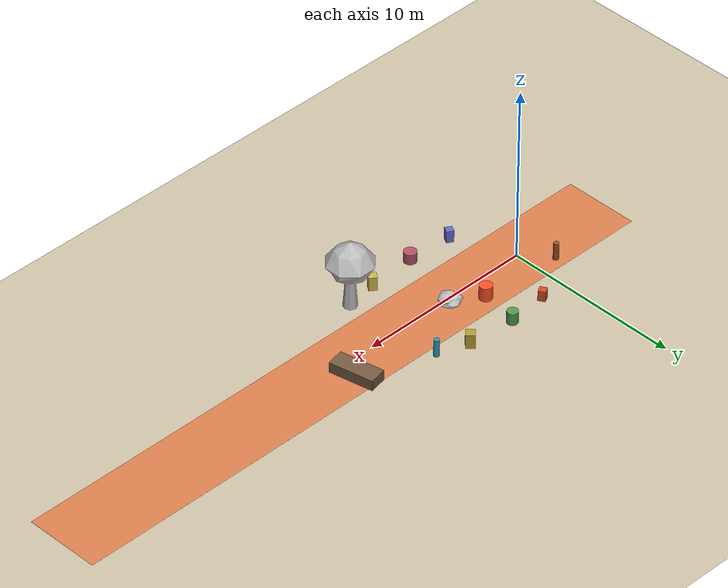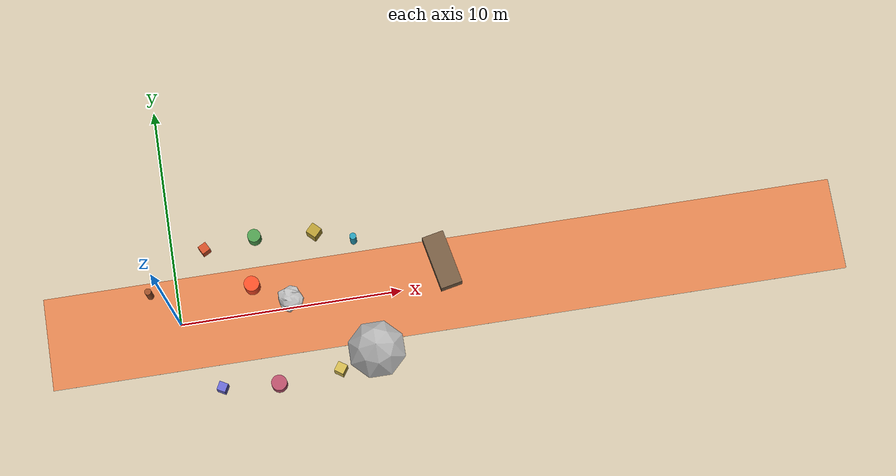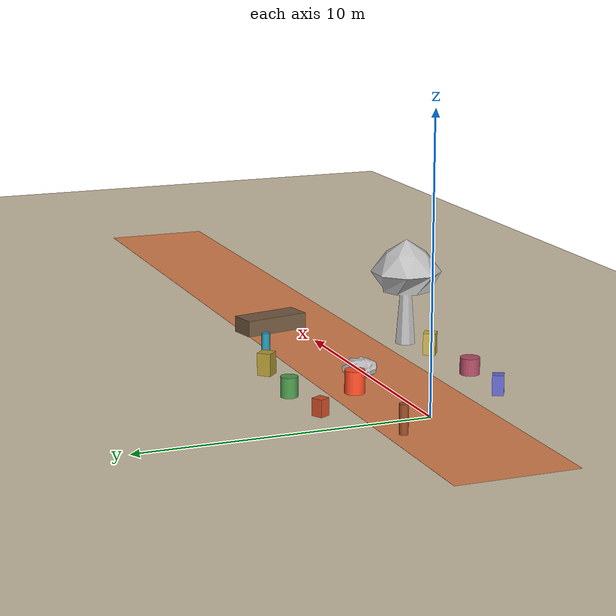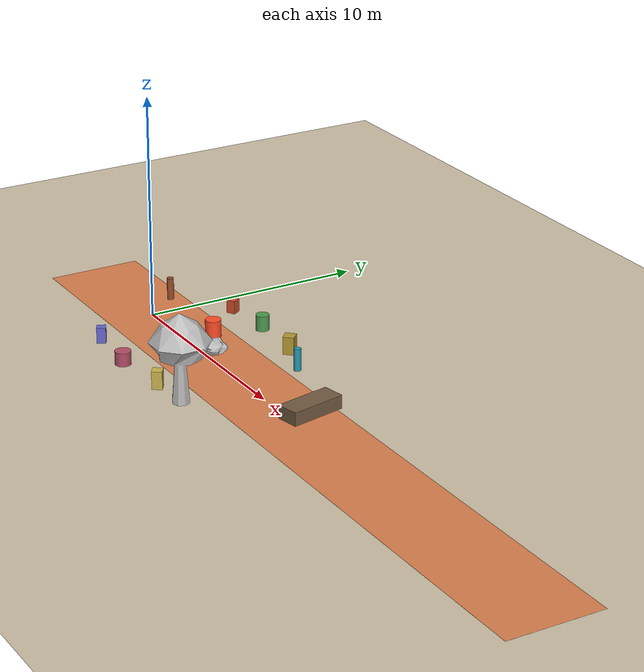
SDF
<?xml version="1.0" ?>
<sdf version="1.8">
  <world name="outdoor_terrain">

    <!-- Physics engine -->
    <physics name="1ms" type="ignored">
      <max_step_size>0.001</max_step_size>
      <real_time_factor>1.0</real_time_factor>
    </physics>

    <!-- Essential Gazebo Plugins -->
    <plugin filename="gz-sim-physics-system" name="gz::sim::systems::Physics"/>
    <plugin filename="gz-sim-user-commands-system" name="gz::sim::systems::UserCommands"/>
    <plugin filename="gz-sim-scene-broadcaster-system" name="gz::sim::systems::SceneBroadcaster"/>
    <plugin filename="gz-sim-sensors-system" name="gz::sim::systems::Sensors">
      <render_engine>ogre2</render_engine>
    </plugin>
    <plugin filename="gz-sim-imu-system" name="gz::sim::systems::Imu"/>

    <!-- Sunlight & Atmosphere -->
    <light type="directional" name="sun">
      <cast_shadows>true</cast_shadows>
      <pose>0 0 30 0 0 0</pose>
      <diffuse>0.9 0.85 0.8 1</diffuse>
      <specular>0.3 0.3 0.3 1</specular>
      <direction>-0.5 0.3 -0.9</direction>
    </light>

    <!-- Outdoor Ground Plane / Arid Scrub Terrain -->
    <model name="outdoor_ground">
      <static>true</static>
      <link name="ground_link">
        <collision name="ground_collision">
          <geometry>
            <plane>
              <normal>0 0 1</normal>
              <size>100 100</size>
            </plane>
          </geometry>
        </collision>
        <visual name="ground_visual">
          <geometry>
            <plane>
              <normal>0 0 1</normal>
              <size>100 100</size>
            </plane>
          </geometry>
          <material>
            <ambient>0.6 0.55 0.45 1</ambient>
            <diffuse>0.8 0.75 0.65 1</diffuse>
            <specular>0.05 0.05 0.05 1</specular>
            <pbr>
              <metal>
                <albedo_map>materials/textures/arid_grass.png</albedo_map>
              </metal>
            </pbr>
          </material>
        </visual>
      </link>
    </model>

    <!-- Indian Red Laterite Trail Corridor (Central Traversable Pathway) -->
    <model name="laterite_trail">
      <static>true</static>
      <pose>12.0 0.0 0.001 0 0 0</pose>
      <link name="trail_link">
        <visual name="trail_visual">
          <geometry>
            <box>
              <size>36.0 4.2 0.002</size>
            </box>
          </geometry>
          <material>
            <ambient>0.7 0.4 0.25 1</ambient>
            <diffuse>0.85 0.5 0.3 1</diffuse>
            <specular>0.05 0.05 0.05 1</specular>
            <pbr>
              <metal>
                <albedo_map>materials/textures/laterite_trail.png</albedo_map>
              </metal>
            </pbr>
          </material>
        </visual>
      </link>
    </model>

    <!-- Obstacle 1: Faceted Weathered Rock Boulder (blocking direct path at x=5, y=0.35) -->
    <model name="boulder_obstacle">
      <static>true</static>
      <pose>5.0 0.35 0.0 0 0 0.4</pose>
      <link name="boulder_link">
        <collision name="boulder_col">
          <geometry>
            <cylinder>
              <radius>0.50</radius>
              <length>0.9</length>
            </cylinder>
          </geometry>
          <pose>0 0 0.45 0 0 0</pose>
        </collision>
        <visual name="boulder_vis">
          <geometry>
            <mesh>
              <uri>model://realistic_boulder/meshes/boulder.obj</uri>
              <scale>0.75 0.75 0.75</scale>
            </mesh>
          </geometry>
        </visual>
      </link>
    </model>

    <!-- Obstacle 2: Textured Scrub Tree / Vegetative Hazard at x=8.5, y=-3.0 (moved south to clear south return corridor) -->
    <model name="tree_obstacle">
      <static>true</static>
      <pose>8.5 -3.0 0.0 0 0 0</pose>
      <link name="tree_link">
        <collision name="tree_col">
          <geometry>
            <cylinder>
              <radius>0.42</radius>
              <length>3.2</length>
            </cylinder>
          </geometry>
          <pose>0 0 1.6 0 0 0</pose>
        </collision>
        <visual name="tree_vis">
          <geometry>
            <mesh>
              <uri>model://scrub_tree/meshes/tree.obj</uri>
              <scale>1.0 1.0 1.0</scale>
            </mesh>
          </geometry>
        </visual>
      </link>
    </model>

    <!-- Obstacle 3: Natural Ditch Barrier at x=12, y=1.0 -->
    <model name="barrier_obstacle">
      <static>true</static>
      <pose>12.0 1.0 0.3 0 0 0.2</pose>
      <link name="barrier_link">
        <collision name="barrier_col">
          <geometry>
            <box>
              <size>1.0 2.5 0.6</size>
            </box>
          </geometry>
        </collision>
        <visual name="barrier_vis">
          <geometry>
            <box>
              <size>1.0 2.5 0.6</size>
            </box>
          </geometry>
          <material>
            <ambient>0.3 0.25 0.2 1</ambient>
            <diffuse>0.45 0.35 0.25 1</diffuse>
          </material>
        </visual>
      </link>
    </model>

    <!-- Natural Trail Visual Landmarks (Provide photometric features for Visual Odometry in outdoor terrain) -->
    <model name="trail_marker_L1">
      <static>true</static>
      <pose>1.5 3.2 0.3 0 0 0.5</pose>
      <link name="link">
        <collision name="col"><geometry><box><size>0.4 0.4 0.6</size></box></geometry></collision>
        <visual name="vis">
          <geometry><box><size>0.4 0.4 0.6</size></box></geometry>
          <material><ambient>0.6 0.2 0.1 1</ambient><diffuse>0.8 0.3 0.15 1</diffuse></material>
        </visual>
      </link>
    </model>

    <model name="trail_marker_L2">
      <static>true</static>
      <pose>3.8 3.4 0.35 0 0 -0.3</pose>
      <link name="link">
        <collision name="col"><geometry><cylinder><radius>0.3</radius><length>0.7</length></cylinder></geometry></collision>
        <visual name="vis">
          <geometry><cylinder><radius>0.3</radius><length>0.7</length></cylinder></geometry>
          <material><ambient>0.2 0.4 0.2 1</ambient><diffuse>0.3 0.6 0.3 1</diffuse></material>
        </visual>
      </link>
    </model>

    <model name="trail_marker_L3">
      <static>true</static>
      <pose>6.5 3.2 0.4 0 0 0.8</pose>
      <link name="link">
        <collision name="col"><geometry><box><size>0.5 0.5 0.8</size></box></geometry></collision>
        <visual name="vis">
          <geometry><box><size>0.5 0.5 0.8</size></box></geometry>
          <material><ambient>0.5 0.4 0.1 1</ambient><diffuse>0.7 0.6 0.2 1</diffuse></material>
        </visual>
      </link>
    </model>

    <model name="trail_marker_R1">
      <static>true</static>
      <pose>1.5 -3.2 0.35 0 0 -0.5</pose>
      <link name="link">
        <collision name="col"><geometry><box><size>0.4 0.4 0.7</size></box></geometry></collision>
        <visual name="vis">
          <geometry><box><size>0.4 0.4 0.7</size></box></geometry>
          <material><ambient>0.3 0.3 0.5 1</ambient><diffuse>0.4 0.4 0.8 1</diffuse></material>
        </visual>
      </link>
    </model>

    <model name="trail_marker_R2">
      <static>true</static>
      <pose>4.0 -3.4 0.3 0 0 0.2</pose>
      <link name="link">
        <collision name="col"><geometry><cylinder><radius>0.35</radius><length>0.6</length></cylinder></geometry></collision>
        <visual name="vis">
          <geometry><cylinder><radius>0.35</radius><length>0.6</length></cylinder></geometry>
          <material><ambient>0.5 0.2 0.3 1</ambient><diffuse>0.7 0.3 0.4 1</diffuse></material>
        </visual>
      </link>
    </model>

    <model name="trail_marker_R3">
      <static>true</static>
      <pose>6.8 -3.2 0.4 0 0 -0.6</pose>
      <link name="link">
        <collision name="col"><geometry><box><size>0.45 0.45 0.8</size></box></geometry></collision>
        <visual name="vis">
          <geometry><box><size>0.45 0.45 0.8</size></box></geometry>
          <material><ambient>0.6 0.5 0.2 1</ambient><diffuse>0.8 0.7 0.3 1</diffuse></material>
        </visual>
      </link>
    </model>

    <!-- Trail Start & End Landmarks -->
    <model name="trail_post_start">
      <static>true</static>
      <pose>-1.2 1.5 0.5 0 0 0</pose>
      <link name="link">
        <collision name="col"><geometry><cylinder><radius>0.15</radius><length>1.0</length></cylinder></geometry></collision>
        <visual name="vis">
          <geometry><cylinder><radius>0.15</radius><length>1.0</length></cylinder></geometry>
          <material><ambient>0.4 0.2 0.1 1</ambient><diffuse>0.6 0.3 0.15 1</diffuse></material>
        </visual>
      </link>
    </model>

    <model name="trail_post_goal">
      <static>true</static>
      <pose>8.2 2.6 0.5 0 0 0</pose>
      <link name="link">
        <collision name="col"><geometry><cylinder><radius>0.15</radius><length>1.0</length></cylinder></geometry></collision>
        <visual name="vis">
          <geometry><cylinder><radius>0.15</radius><length>1.0</length></cylinder></geometry>
          <material><ambient>0.1 0.4 0.5 1</ambient><diffuse>0.15 0.6 0.7 1</diffuse></material>
        </visual>
      </link>
    </model>

    <!-- Dynamic Moving Hazard (SIH Phase 5 Collision Avoidance) -->
    <model name="dynamic_patrol_hazard">
      <pose>3.4 1.2 0.4 0 0 0</pose>
      <link name="hazard_link">
        <inertial>
          <mass>15.0</mass>
          <inertia>
            <ixx>0.5</ixx><iyy>0.5</iyy><izz>0.5</izz>
          </inertia>
        </inertial>
        <collision name="col">
          <geometry>
            <cylinder><radius>0.35</radius><length>0.8</length></cylinder>
          </geometry>
        </collision>
        <visual name="vis">
          <geometry>
            <cylinder><radius>0.35</radius><length>0.8</length></cylinder>
          </geometry>
          <material>
            <ambient>0.9 0.15 0.1 1</ambient>
            <diffuse>1.0 0.3 0.15 1</diffuse>
            <specular>0.8 0.8 0.8 1</specular>
          </material>
        </visual>
      </link>
      <plugin filename="gz-sim-trajectory-follower-system" name="gz::sim::systems::TrajectoryFollower">
        <link_name>hazard_link</link_name>
        <loop>true</loop>
        <waypoints>
          <waypoint>
            <time>0.0</time>
            <pose>3.4 1.2 0.4 0 0 0</pose>
          </waypoint>
          <waypoint>
            <time>6.0</time>
            <pose>3.4 2.6 0.4 0 0 0</pose>
          </waypoint>
          <waypoint>
            <time>12.0</time>
            <pose>3.4 1.2 0.4 0 0 0</pose>
          </waypoint>
        </waypoints>
      </plugin>
    </model>

  </world>
</sdf>
